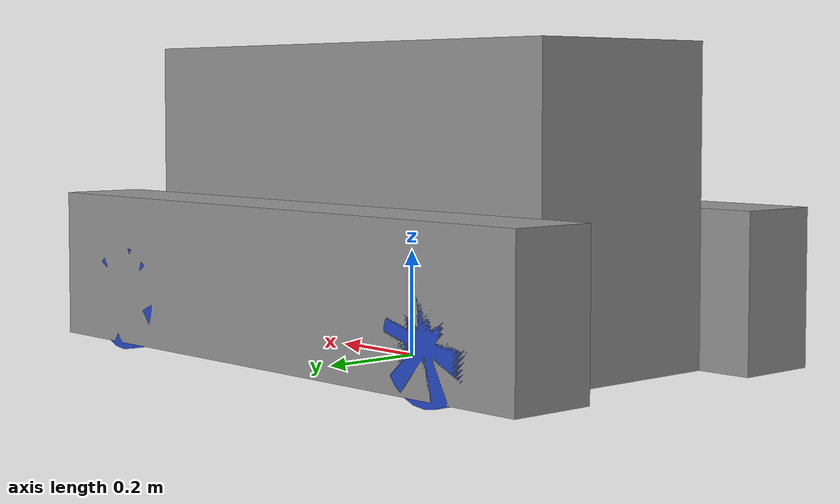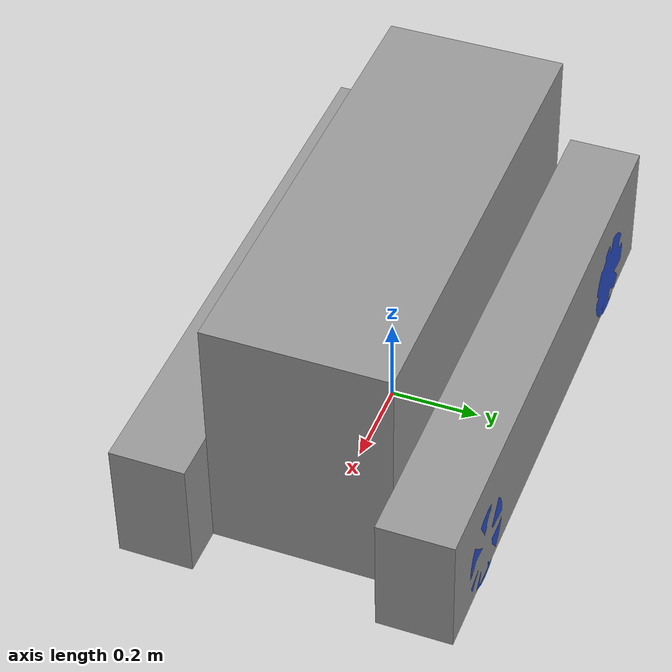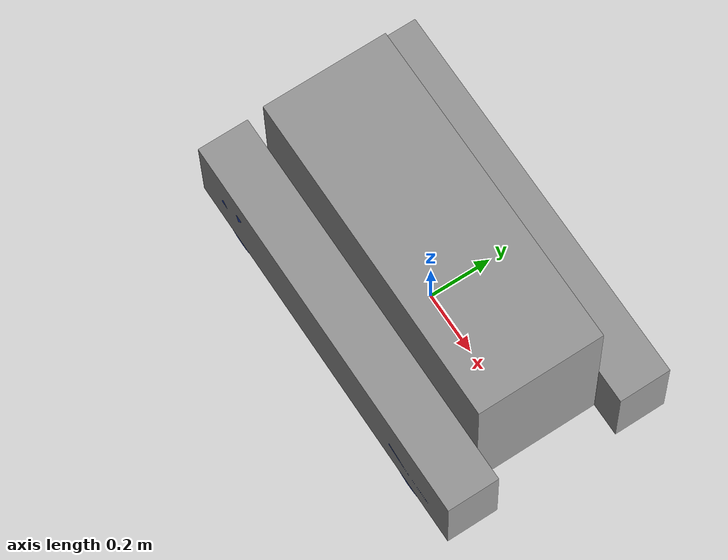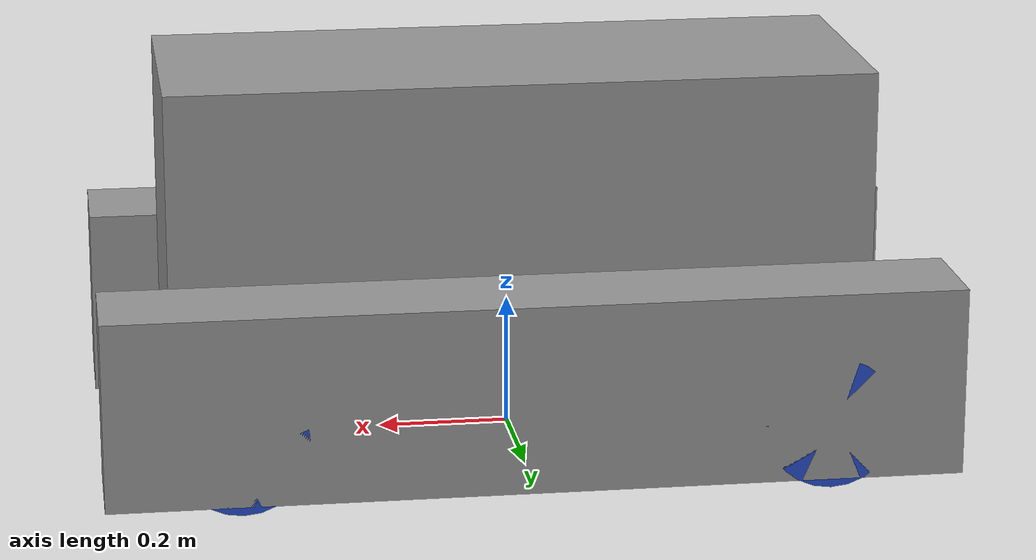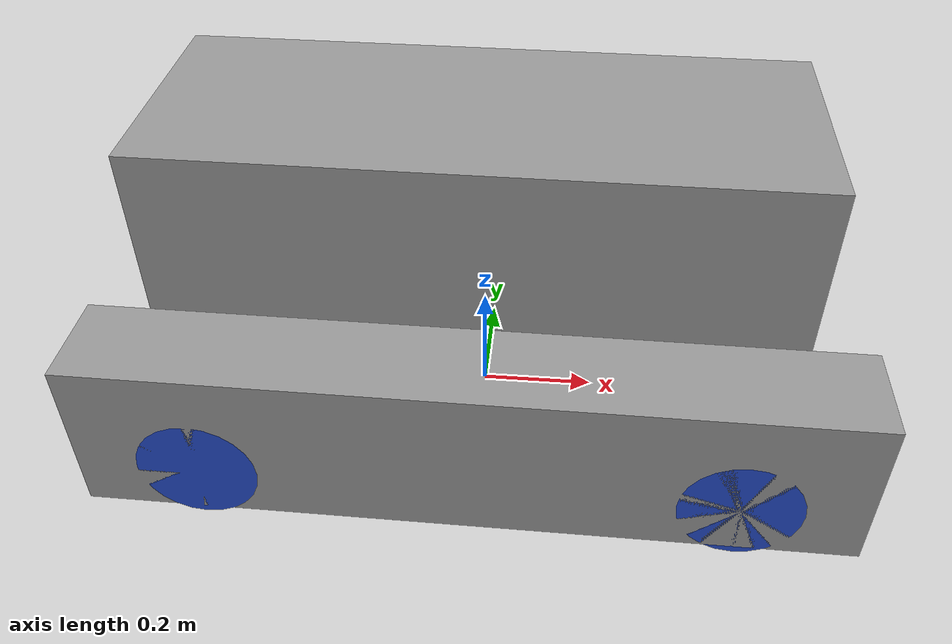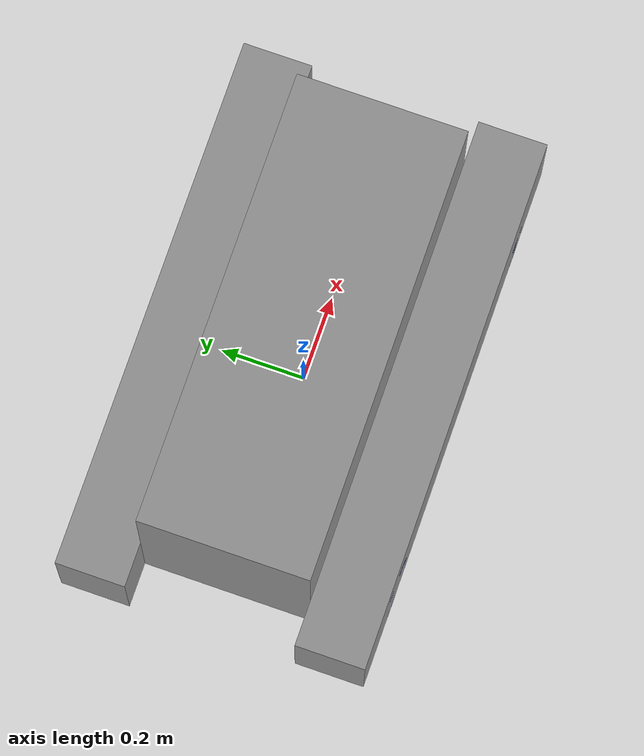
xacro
<?xml version="1.0"?>
<!-- Scara manipulator -->
<robot xmlns:xacro="http://www.ros.org/wiki/xacro" name="grond_platform">

    <xacro:arg name="prefix" default=""/>
    <xacro:arg name="use_fake_hardware" default="false"/>

    <xacro:include filename="$(find grond_description)/urdf/platform.macro.xacro" />
    <xacro:grond_base prefix="$(arg prefix)"/>

    <xacro:include filename="$(find grond_description)/urdf/platform.ros2_control.xacro" />
    <xacro:platform_ros2_control prefix="$(arg prefix)" use_fake_hardware="$(arg use_fake_hardware)"/>

</robot>

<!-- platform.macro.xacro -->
<robot name = "platform" xmlns:xacro="http://www.ros.org/wiki/xacro">

<xacro:macro name="grond_base" params="prefix">

  <link name="${prefix}base_footprint"/>
  <link name="${prefix}mount_frame"/>
  <joint name="mount_frame_joint" type="fixed">
    <parent link="${prefix}base_footprint"/>
    <child link="${prefix}mount_frame"/>
    <origin xyz="0 0 ${0.290+0.310}"/>
  </joint>

  <xacro:include filename="$(find grond_description)/config/materials.urdf" />

<!-- Base structure -->

  <link name="${prefix}core">
    <visual>
      <geometry>
        <box size="${1.060} ${(0.730-(0.165*2))} ${(0.600-0.025)}"/>
      </geometry>
      <material name="grey"/>
    </visual>
    <collision>
      <geometry>
        <box size="${1.060} ${(0.730-(0.165*2))} ${(0.600-0.025)}"/>
      </geometry>
    </collision>
  </link>

  <link name="${prefix}barrier_right">
    <visual>
      <geometry>
        <box size="${1.270} ${(0.125+0.040)} ${(0.310-0.025)}"/>
      </geometry>
      <material name="grey"/>
    </visual>
    <collision>
      <geometry>
        <box size="${1.270} ${(0.125+0.040)} ${(0.310-0.025)}"/>
      </geometry>
    </collision>
  </link>

  <link name="${prefix}barrier_left">
    <visual>
      <geometry>
        <box size="${1.270} ${(0.125+0.040)} ${(0.310-0.025)}"/>
      </geometry>
      <material name="grey"/>
    </visual>
    <collision>
      <geometry>
        <box size="${1.270} ${(0.125+0.040)} ${(0.310-0.025)}"/>
      </geometry>
    </collision>
  </link>

  <joint name="move_core" type="fixed">
    <parent link="${prefix}base_footprint"/>
    <child link="${prefix}core"/>
    <origin xyz="0.0 0.0 ${(0.290+0.310)/2}"/>
  </joint>

  <joint name="move_barrier_right" type="fixed">
    <parent link="${prefix}core"/>
    <child link="${prefix}barrier_right"/>
    <origin xyz="0.0 ${-0.730/2+0.165/2} ${-(0.290+0.310)/2+(0.310)/2}"/>
  </joint>

  <joint name="move_barrier_left" type="fixed">
    <parent link="${prefix}core"/>
    <child link="${prefix}barrier_left"/>
    <origin xyz="0.0 ${+0.730/2-0.165/2} ${-(0.290+0.310)/2+(0.310)/2}"/>
  </joint>

<!-- Wheels -->

<link name="${prefix}front_axis"/>
<link name="${prefix}wheel_front_right">
  <visual>
    <geometry>
      <cylinder radius="0.100" length="0.100"/>
    </geometry>
    <material name="blue"/>
  </visual>
  <collision>
    <geometry>
      <cylinder radius="0.100" length="0.100"/>
    </geometry>
  </collision>
</link>
<link name="${prefix}wheel_front_left">
  <visual>
    <geometry>
      <cylinder radius="0.100" length="0.100"/>
    </geometry>
    <material name="blue"/>
  </visual>
  <collision>
    <geometry>
      <cylinder radius="0.100" length="0.100"/>
    </geometry>
  </collision>
</link>

<link name="${prefix}back_axis"/>
<link name="${prefix}wheel_rear_right">
  <visual>
    <geometry>
      <cylinder radius="0.100" length="0.100"/>
    </geometry>
    <material name="blue"/>
  </visual>
  <collision>
    <geometry>
      <cylinder radius="0.100" length="0.100"/>
    </geometry>
  </collision>
</link>
<link name="${prefix}wheel_rear_left">
  <visual>
    <geometry>
      <cylinder radius="0.100" length="0.100"/>
    </geometry>
    <material name="blue"/>
  </visual>
  <collision>
    <geometry>
      <cylinder radius="0.100" length="0.100"/>
    </geometry>
  </collision>
</link>

<joint name="${prefix}move_front_axis" type="fixed">
  <parent link="${prefix}base_footprint"/>
  <child link="${prefix}front_axis"/>
  <origin xyz="${1.270/2 - 0.20} ${0.0} ${0.10}"/>
</joint>
<joint name="${prefix}wheel_front_right_joint" type="continuous">
  <parent link="${prefix}front_axis"/>
  <child link="${prefix}wheel_front_right"/>
  <axis xyz="0 0 -1"/>
  <origin xyz="0.0 ${-0.730/2 + 0.100/2} 0.0" rpy="${pi/2} 0.0 0.0"/>
</joint>
<joint name="${prefix}wheel_front_left_joint" type="continuous">
  <parent link="${prefix}front_axis"/>
  <child link="${prefix}wheel_front_left"/>
  <axis xyz="0 0 1"/>
  <origin xyz="0.0 ${0.730/2 - 0.100/2} 0.0" rpy="${-pi/2} 0.0 0.0"/>
</joint>

<joint name="${prefix}move_rear_axis" type="fixed">
  <parent link="${prefix}base_footprint"/>
  <child link="${prefix}back_axis"/>
  <origin xyz="${-1.270/2 + 0.20} ${0.0} ${0.10}"/>
</joint>
<joint name="${prefix}wheel_rear_right_joint" type="continuous">
  <parent link="${prefix}back_axis"/>
  <child link="${prefix}wheel_rear_right"/>
  <axis xyz="0 0 -1"/>
  <origin xyz="0.0 ${-0.730/2 + 0.100/2} 0.0" rpy="${pi/2} 0.0 0.0"/>
</joint>
<joint name="${prefix}wheel_rear_left_joint" type="continuous">
  <parent link="${prefix}back_axis"/>
  <child link="${prefix}wheel_rear_left"/>
  <axis xyz="0 0 1"/>
  <origin xyz="0.0 ${0.730/2 - 0.100/2} 0.0" rpy="${-pi/2} 0.0 0.0"/>
</joint>

<!-- Lidar -->
<link name="${prefix}lidar"/>
<joint name="core_to_lidar" type="fixed">
  <parent link="${prefix}front_axis"/>
  <child link="${prefix}lidar"/>
  <origin xyz="0 0 ${0.35}" rpy="0.0 0.0 ${-pi/2}"/>
</joint>

</xacro:macro>

</robot>
